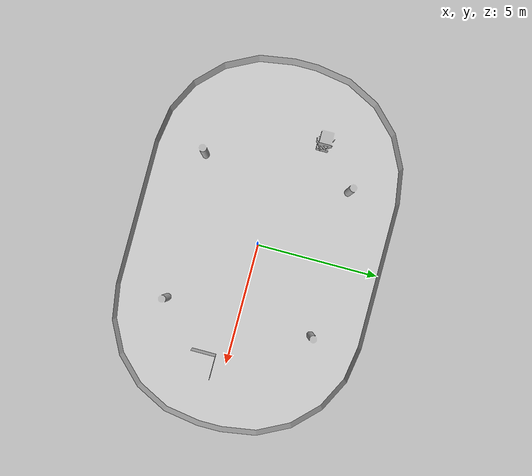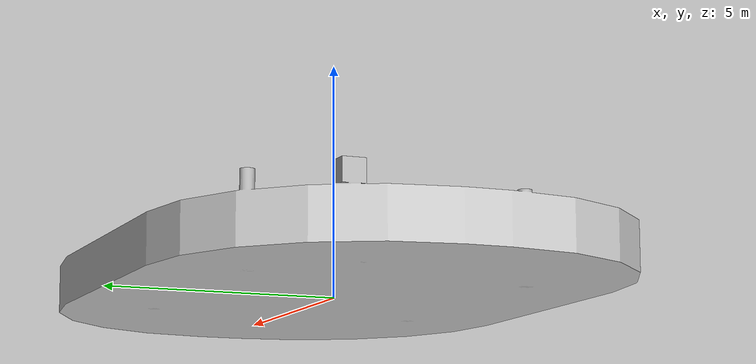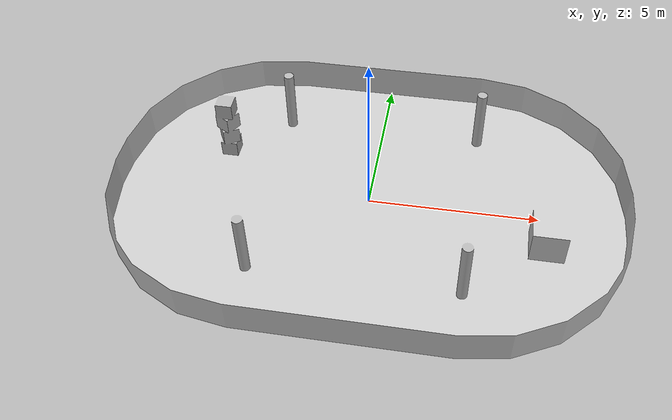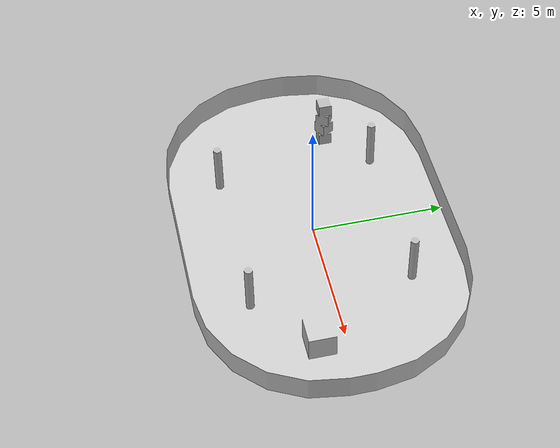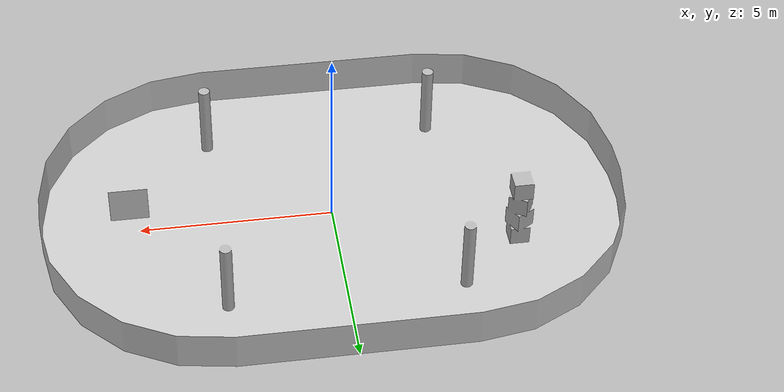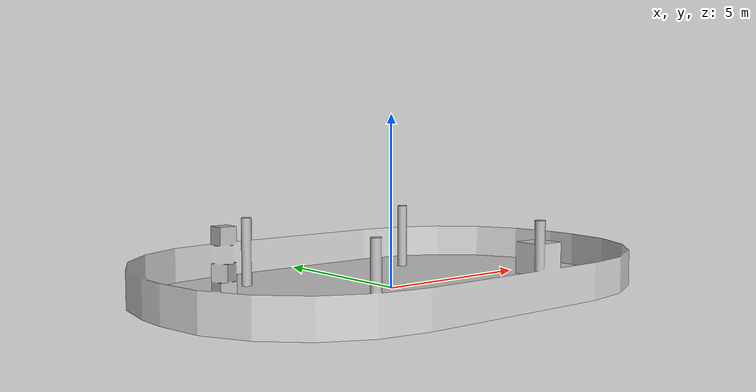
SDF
<?xml version="1.0" ?>
<sdf version="1.7">
    <model name="arena">
        <pose>0 0 0.0001 0 0 0</pose>
        <static>1</static>

        <link name="arena_link">

            <visual name="visual_arena">
                <geometry>
                    <mesh><uri>model://arena2/meshes/arena.dae</uri></mesh>
                </geometry>
            </visual>

            <collision name="collision_arena">
                <geometry>
                    <mesh><uri>model://arena2/meshes/arena.dae</uri></mesh>
                </geometry>
            </collision>
        </link>
    </model>
</sdf>
